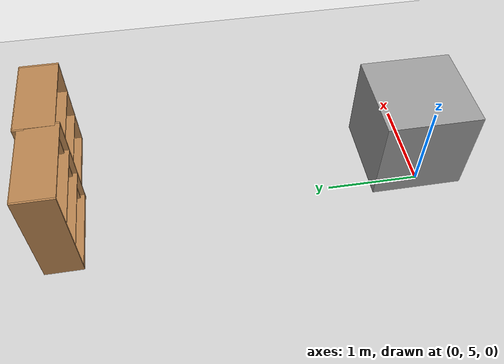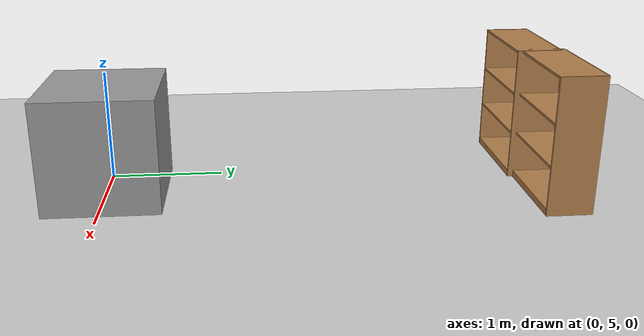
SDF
<sdf version="1.7">
 <world name="default">
  <model name="ground_plane">
   <static>1</static>
   <link name="link">
    <collision name="collision">
     <geometry><plane><normal>0 0 1</normal><size>100 100</size></plane></geometry>
     <surface>
      <contact><collide_bitmask>65535</collide_bitmask></contact>
      <friction><ode><mu>100</mu><mu2>50</mu2></ode></friction>
     </surface>
    </collision>
    <visual name="visual">
     <cast_shadows>0</cast_shadows>
     <geometry><plane><normal>0 0 1</normal><size>100 100</size></plane></geometry>
     <material>
      <script><uri>file://media/materials/scripts/gazebo.material</uri><name>Gazebo/Grey</name></script>
     </material>
    </visual>
   </link>
  </model>
  <model name="unit_box_0">
   <pose>0.365531 5.03237 0.499995 -1e-05 0 0</pose>
   <link name="link">
    <inertial>
     <mass>1</mass>
     <inertia>
      <ixx>0.166667</ixx>
      <ixy>0</ixy>
      <ixz>0</ixz>
      <iyy>0.166667</iyy>
      <iyz>0</iyz>
      <izz>0.166667</izz>
     </inertia>
    </inertial>
    <collision name="collision"><geometry><box><size>1 1 1</size></box></geometry></collision>
    <visual name="visual">
     <geometry><box><size>1 1 1</size></box></geometry>
     <material>
      <script><name>Gazebo/Grey</name><uri>file://media/materials/scripts/gazebo.material</uri></script>
     </material>
    </visual>
   </link>
  </model>
  <model name="bookshelf_clone_4">
   <static>1</static>
   <link name="link">
    <inertial><mass>1</mass></inertial>
    <collision name="back">
     <pose>0 0.005 0.6 0 -0 0</pose>
     <geometry><box><size>0.9 0.01 1.2</size></box></geometry>
    </collision>
    <visual name="visual1">
     <pose>0 0.005 0.6 0 -0 0</pose>
     <geometry><box><size>0.9 0.01 1.2</size></box></geometry>
     <material>
      <script><uri>file://media/materials/scripts/gazebo.material</uri><name>Gazebo/Wood</name></script>
     </material>
    </visual>
    <collision name="left_side">
     <pose>0.45 -0.195 0.6 0 -0 0</pose>
     <geometry><box><size>0.02 0.4 1.2</size></box></geometry>
    </collision>
    <visual name="visual2">
     <pose>0.45 -0.195 0.6 0 -0 0</pose>
     <geometry><box><size>0.02 0.4 1.2</size></box></geometry>
     <material>
      <script><uri>file://media/materials/scripts/gazebo.material</uri><name>Gazebo/Wood</name></script>
     </material>
    </visual>
    <collision name="right_side">
     <pose>-0.45 -0.195 0.6 0 -0 0</pose>
     <geometry><box><size>0.02 0.4 1.2</size></box></geometry>
    </collision>
    <visual name="visual3">
     <pose>-0.45 -0.195 0.6 0 -0 0</pose>
     <geometry><box><size>0.02 0.4 1.2</size></box></geometry>
     <material>
      <script><uri>file://media/materials/scripts/gazebo.material</uri><name>Gazebo/Wood</name></script>
     </material>
    </visual>
    <collision name="bottom">
     <pose>0 -0.195 0.03 0 -0 0</pose>
     <geometry><box><size>0.88 0.4 0.06</size></box></geometry>
    </collision>
    <visual name="visual4">
     <pose>0 -0.195 0.03 0 -0 0</pose>
     <geometry><box><size>0.88 0.4 0.06</size></box></geometry>
     <material>
      <script><uri>file://media/materials/scripts/gazebo.material</uri><name>Gazebo/Wood</name></script>
     </material>
    </visual>
    <collision name="top">
     <pose>0 -0.195 1.19 0 -0 0</pose>
     <geometry><box><size>0.88 0.4 0.02</size></box></geometry>
    </collision>
    <visual name="visual5">
     <pose>0 -0.195 1.19 0 -0 0</pose>
     <geometry><box><size>0.88 0.4 0.02</size></box></geometry>
     <material>
      <script><uri>file://media/materials/scripts/gazebo.material</uri><name>Gazebo/Wood</name></script>
     </material>
    </visual>
    <collision name="low_shelf">
     <pose>0 -0.195 0.43 0 -0 0</pose>
     <geometry><box><size>0.88 0.4 0.02</size></box></geometry>
    </collision>
    <visual name="visual6">
     <pose>0 -0.195 0.43 0 -0 0</pose>
     <geometry><box><size>0.88 0.4 0.02</size></box></geometry>
     <material>
      <script><uri>file://media/materials/scripts/gazebo.material</uri><name>Gazebo/Wood</name></script>
     </material>
    </visual>
    <collision name="high_shelf">
     <pose>0 -0.195 0.8 0 -0 0</pose>
     <geometry><box><size>0.88 0.4 0.02</size></box></geometry>
    </collision>
    <visual name="visual7">
     <pose>0 -0.195 0.8 0 -0 0</pose>
     <geometry><box><size>0.88 0.4 0.02</size></box></geometry>
     <material>
      <script><uri>file://media/materials/scripts/gazebo.material</uri><name>Gazebo/Wood</name></script>
     </material>
    </visual>
   </link>
   <pose>-0.14346 9.06695 0 0 -0 0</pose>
  </model>
  <model name="bookshelf_clone_5">
   <static>1</static>
   <link name="link">
    <inertial><mass>1</mass></inertial>
    <collision name="back">
     <pose>0 0.005 0.6 0 -0 0</pose>
     <geometry><box><size>0.9 0.01 1.2</size></box></geometry>
    </collision>
    <visual name="visual1">
     <pose>0 0.005 0.6 0 -0 0</pose>
     <geometry><box><size>0.9 0.01 1.2</size></box></geometry>
     <material>
      <script><uri>file://media/materials/scripts/gazebo.material</uri><name>Gazebo/Wood</name></script>
     </material>
    </visual>
    <collision name="left_side">
     <pose>0.45 -0.195 0.6 0 -0 0</pose>
     <geometry><box><size>0.02 0.4 1.2</size></box></geometry>
    </collision>
    <visual name="visual2">
     <pose>0.45 -0.195 0.6 0 -0 0</pose>
     <geometry><box><size>0.02 0.4 1.2</size></box></geometry>
     <material>
      <script><uri>file://media/materials/scripts/gazebo.material</uri><name>Gazebo/Wood</name></script>
     </material>
    </visual>
    <collision name="right_side">
     <pose>-0.45 -0.195 0.6 0 -0 0</pose>
     <geometry><box><size>0.02 0.4 1.2</size></box></geometry>
    </collision>
    <visual name="visual3">
     <pose>-0.45 -0.195 0.6 0 -0 0</pose>
     <geometry><box><size>0.02 0.4 1.2</size></box></geometry>
     <material>
      <script><uri>file://media/materials/scripts/gazebo.material</uri><name>Gazebo/Wood</name></script>
     </material>
    </visual>
    <collision name="bottom">
     <pose>0 -0.195 0.03 0 -0 0</pose>
     <geometry><box><size>0.88 0.4 0.06</size></box></geometry>
    </collision>
    <visual name="visual4">
     <pose>0 -0.195 0.03 0 -0 0</pose>
     <geometry><box><size>0.88 0.4 0.06</size></box></geometry>
     <material>
      <script><uri>file://media/materials/scripts/gazebo.material</uri><name>Gazebo/Wood</name></script>
     </material>
    </visual>
    <collision name="top">
     <pose>0 -0.195 1.19 0 -0 0</pose>
     <geometry><box><size>0.88 0.4 0.02</size></box></geometry>
    </collision>
    <visual name="visual5">
     <pose>0 -0.195 1.19 0 -0 0</pose>
     <geometry><box><size>0.88 0.4 0.02</size></box></geometry>
     <material>
      <script><uri>file://media/materials/scripts/gazebo.material</uri><name>Gazebo/Wood</name></script>
     </material>
    </visual>
    <collision name="low_shelf">
     <pose>0 -0.195 0.43 0 -0 0</pose>
     <geometry><box><size>0.88 0.4 0.02</size></box></geometry>
    </collision>
    <visual name="visual6">
     <pose>0 -0.195 0.43 0 -0 0</pose>
     <geometry><box><size>0.88 0.4 0.02</size></box></geometry>
     <material>
      <script><uri>file://media/materials/scripts/gazebo.material</uri><name>Gazebo/Wood</name></script>
     </material>
    </visual>
    <collision name="high_shelf">
     <pose>0 -0.195 0.8 0 -0 0</pose>
     <geometry><box><size>0.88 0.4 0.02</size></box></geometry>
    </collision>
    <visual name="visual7">
     <pose>0 -0.195 0.8 0 -0 0</pose>
     <geometry><box><size>0.88 0.4 0.02</size></box></geometry>
     <material>
      <script><uri>file://media/materials/scripts/gazebo.material</uri><name>Gazebo/Wood</name></script>
     </material>
    </visual>
   </link>
   <pose>0.713699 9.11178 0 0 -0 0</pose>
  </model>
 </world>
</sdf>
